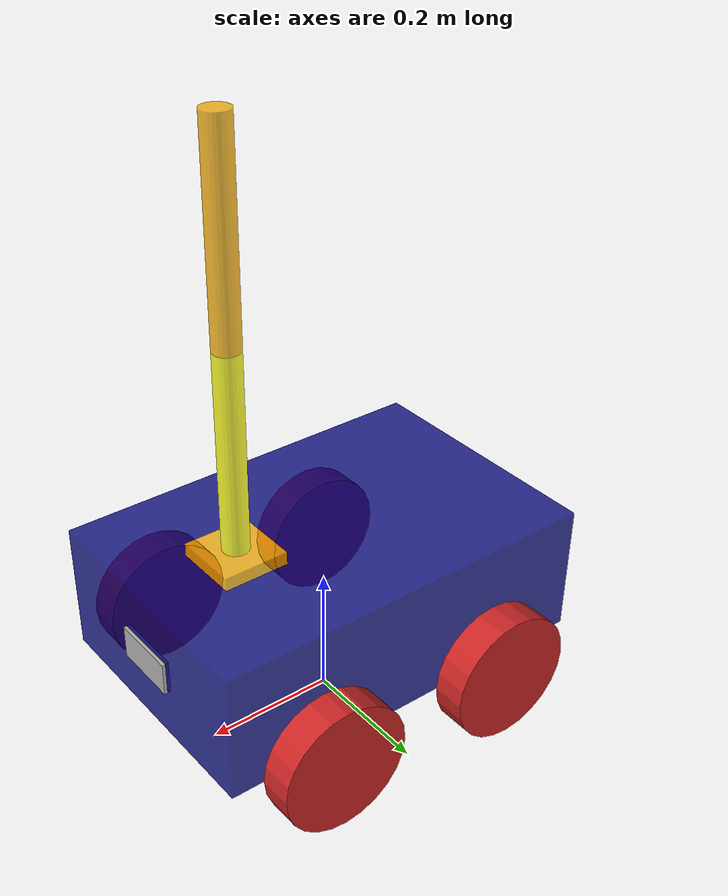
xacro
<?xml version="1.0" encoding="UTF-8"?>
<robot name="my_robot" xmlns:xacro="http://www.ros.org/wiki/xacro">

    <xacro:include filename="common_properties.xacro" />
    <xacro:include filename="mobile_base.xacro" />
    <xacro:include filename="mobile_base_gazebo.xacro" />
    <xacro:include filename="camera.xacro"/>
    <xacro:include filename="mobile_arm.xacro"/>
    <xacro:include filename="mobile_arm_gazebo.xacro"/>

</robot>

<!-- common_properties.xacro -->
<robot xmlns:xacro="http://www.ros.org/wiki/xacro">

    <!-- materials -->
    <material name="green">
        <color rgba="0 0.5 0 0.8" />
    </material>

    <material name="blue">
        <color rgba="0 0 0.5 0.8" />
    </material>

    <material name="grey">
        <color rgba="0.5 0.5 0.5 0.8" />
    </material>

    <material name="orange">
        <color rgba="1 0.7 0 0.8" />
    </material>

    <material name="yellow">
        <color rgba="1 1 0 0.8" />
    </material>

<!-- xacro marcos -->
    <xacro:macro name="box_inertia" params="m l w h xyz rpy">
        <inertial>
            <origin xyz="${xyz}" rpy="${rpy}" />
            <mass value="${m}" />
            <inertia ixx="${(m/12) * (h*h + l*l)}" ixy="0" ixz="0"
                     iyx="0" iyy="${(m/12) * (w*w + l*l)}" iyz="0"
                     izx="0" izy="0" izz="${(m/12) * (w*w + h*h)}"/>
        </inertial>
    </xacro:macro>

    <xacro:macro name="cylinder_inertia" params="m r h xyz rpy">
    <inertial>
        <origin xyz="${xyz}" rpy="${rpy}" />
        <mass value="${m}" />
        <inertia ixx="${(m/12) * (3*r*r + h*h)}" ixy="0" ixz="0"
                 iyx="0" iyy="${(m/12) * (3*r*r + h*h)}" iyz="0"
                 izx="0" izy="0" izz="${(m*r*r)/2}"/>

    </inertial>
</xacro:macro>

    <xacro:macro name="sphere_inertia" params="m r xyz rpy">
        <inertial>
            <origin xyz="${xyz}" rpy="${rpy}" />
            <mass value="${m}" />
            <inertia ixx="${(2*m*r*r)/5}" ixy="0" ixz="0"
                     iyx="0" iyy="${(2*m*r*r)/5}" iyz="0"
                     izx="0" izy="0" izz="${(2*m*r*r)/5}"/>
        </inertial>
    </xacro:macro>

</robot>

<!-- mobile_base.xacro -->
<robot xmlns:xacro="http://www.ros.org/wiki/xacro">

    <xacro:property name="base_length" value="0.6" />
    <xacro:property name="base_width" value="0.4" />
    <xacro:property name="base_height" value="0.2" />
    <xacro:property name="wheel_radius" value="0.1" />
    <xacro:property name="wheel_length" value="0.05" />

    <link name="imu_frame"/>

    <joint name="imu_joint" type="fixed">
        <parent link="base_link"/>
        <child link="imu_frame"/>
        <origin xyz="0.0 0.0 0.08" rpy="0.0 0.0 0.0"/>
    </joint>

    <link name="base_link">
        <visual>
            <geometry>
                <box size="${base_length} ${base_width} ${base_height}" />
            </geometry>
            <origin xyz="0 0 ${base_height / 2.0}" rpy="0 0 0" />
            <material name="blue" />
        </visual>
        <collision>
            <geometry>
                <box size="${base_length} ${base_width} ${base_height}" />
            </geometry>
            <origin xyz="0 0 ${base_height / 2.0}" rpy="0 0 0" />
        </collision>
        <xacro:box_inertia m="100.0" l="${2*base_length}" w="${2*base_width}" h="${2*base_height}"
                           xyz="0 0 ${base_height / 2.0}" rpy="0 0 0" />
    </link>

    <xacro:macro name="wheel_link" params="prefix">
        <link name="${prefix}_wheel_link">
            <visual>
                <geometry>
                    <cylinder radius="${wheel_radius}" length="${wheel_length}" />
                </geometry>
                <origin xyz="0 0 0" rpy="${pi / 2.0} 0 0" />
                <material name="red" />
            </visual>
            <collision>
                <geometry>
                    <cylinder radius="${wheel_radius}" length="${wheel_length}" />
                </geometry>
                <origin xyz="0 0 0" rpy="${pi / 2.0} 0 0" />
            </collision>
            <xacro:cylinder_inertia m="10.0" r="${2*wheel_radius}" h="${2*wheel_length}"
                                    xyz="0 0 0" rpy="${pi / 2.0} 0 0" />
        </link>
    </xacro:macro>

    <xacro:wheel_link prefix="right_back" />
    <xacro:wheel_link prefix="left_back" />
    <xacro:wheel_link prefix="right_front" />
    <xacro:wheel_link prefix="left_front" />

    <link name="base_footprint">
    </link>

    <joint name="base_right_back_wheel_joint" type="continuous">
        <parent link="base_link" />
        <child link="right_back_wheel_link" />
        <origin xyz="${-base_length / 4.0} ${-(base_width + wheel_length) / 2.0} 0" rpy="0 0 0" />
        <axis xyz="0 1 0" />
    </joint>

    <joint name="base_right_front_wheel_joint" type="continuous">
        <parent link="base_link" />
        <child link="right_front_wheel_link" />
        <origin xyz="${(base_length) / 4.0} ${-(base_width + wheel_length) / 2.0} 0" rpy="0 0 0" />
        <axis xyz="0 1 0" />
    </joint>

     <joint name="base_left_back_wheel_joint" type="continuous">
        <parent link="base_link" />
        <child link="left_back_wheel_link" />
        <origin xyz="${-base_length / 4.0} ${(base_width + wheel_length) / 2.0} 0" rpy="0 0 0" />
        <axis xyz="0 1 0" />
    </joint>

    <joint name="base_left_front_wheel_joint" type="continuous">
        <parent link="base_link" />
        <child link="left_front_wheel_link" />
        <origin xyz="${base_length / 4.0} ${(base_width + wheel_length) / 2.0} 0" rpy="0 0 0" />
        <axis xyz="0 1 0" />
    </joint>

    <joint name="base_footprint_joint" type="fixed">
        <parent link="base_footprint" />
        <child link="base_link" />
        <origin xyz="0 0 ${wheel_radius}" rpy="0 0 0" />
    </joint>

</robot>

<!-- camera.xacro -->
<robot xmlns:xacro="http://www.ros.org/wiki/xacro">

    <xacro:property name="camera_length" value="0.01" />
    <xacro:property name="camera_width" value="0.1" />
    <xacro:property name="camera_height" value="0.05" />

    <link name="camera_link">
        <visual>
            <geometry>
                <box size="${camera_length} ${camera_width} ${camera_height}" />
            </geometry>

        </visual>

        <collision>
            <geometry>
                <box size="${camera_length} ${camera_width} ${camera_height}" />
            </geometry>
        </collision>

        <xacro:box_inertia m="0.1" l="${camera_length}" w="${camera_width}"
            h="${camera_height}" xyz="0 0 0" rpy="0 0 0" />
    </link>

    <link name="camera_optical_link" />

    <joint name="camera_optical_link" type="fixed">
        <origin xyz="0 0 0" rpy="${-pi/2} 0 ${-pi/2}"/>
        <parent link="camera_link" />
        <child link="camera_optical_link" />
    </joint>

    <joint name="base_camera_joint" type="fixed">
        <parent link="base_link" />
        <child link="camera_link" />
        <origin xyz="${base_length/2.0} 0 ${base_height/2.0}" rpy="0 0 0" />
    </joint>

    <gazebo reference="camera_link">
        <sensor type="camera" name="camera1">
          <update_rate>30.0</update_rate>
          <visualize>true</visualize>
          <pose>0 0 0 0 0 0</pose>
          <plugin name="camera_controller" filename="libgazebo_ros_camera.so">
            <frameName>camera_optical_link</frameName>
          </plugin>
        </sensor>
      </gazebo>

</robot>

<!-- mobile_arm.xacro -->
<robot xmlns:xacro="http://www.ros.org/wiki/xacro">

    <xacro:property name="arm_base_length" value="0.1" />
    <xacro:property name="arm_base_width" value="0.1" />
    <xacro:property name="arm_base_height" value="0.02" />
    <xacro:property name="forearm_radius" value="0.02" />
    <xacro:property name="forearm_length" value="0.3" />
    <xacro:property name="hand_radius" value="0.02" />
    <xacro:property name="hand_length" value="0.3" />

    <link name="arm_base_link">
        <visual>
            <geometry>
                <box size="${arm_base_length} ${arm_base_width} ${arm_base_height}" />
            </geometry>
            <origin xyz="0 0 ${arm_base_height / 2.0}" rpy="0 0 0" />
            <material name="orange" />
        </visual>
        <collision>
            <geometry>
                <box size="${arm_base_length} ${arm_base_width} ${arm_base_height}" />
            </geometry>
            <origin xyz="0 0 ${arm_base_height / 2.0}" rpy="0 0 0" />
        </collision>
        <xacro:box_inertia m="0.5" l="${2*arm_base_length}" w="${2*arm_base_width}" h="${2*arm_base_height}"
                           xyz="0 0 ${arm_base_height / 2.0}" rpy="0 0 0" />
    </link>

    <link name="forearm_link">
        <visual>
            <geometry>
                <cylinder radius="${forearm_radius}" length="${forearm_length}" />
            </geometry>
            <origin xyz="0 0 ${forearm_length / 2.0}" rpy="0 0 0" />
            <material name="yellow" />
        </visual>
        <collision>
            <geometry>
                <cylinder radius="${forearm_radius}" length="${forearm_length}" />
            </geometry>
            <origin xyz="0 0 ${forearm_length / 2.0}" rpy="0 0 0" />
        </collision>
        <xacro:cylinder_inertia m="0.3" r="${2*forearm_radius}" h="${2*forearm_length}"
                                xyz="0 0 ${forearm_length / 2.0}" rpy="0 0 0" />
    </link>

    <link name="hand_link">
        <visual>
            <geometry>
                <cylinder radius="${hand_radius}" length="${hand_length}" />
            </geometry>
            <origin xyz="0 0 ${hand_length / 2.0}" rpy="0 0 0" />
            <material name="orange" />
        </visual>
        <collision>
             <geometry>
                <cylinder radius="${hand_radius}" length="${hand_length}" />
            </geometry>
            <origin xyz="0 0 ${hand_length / 2.0}" rpy="0 0 0" />
        </collision>
        <xacro:cylinder_inertia m="0.3" r="${2*hand_radius}" h="${2*hand_length}"
                                xyz="0 0 ${hand_length / 2.0}" rpy="0 0 0" />
    </link>

    <joint name="arm_base_base_link_joint" type="fixed">
        <parent link="base_link" />
        <child link="arm_base_link" />
        <origin xyz="${base_length / 4.0} 0 ${base_height}" rpy="0 0 0" />
    </joint>

    <joint name="arm_base_forearm_joint" type="revolute">
        <parent link="arm_base_link" />
        <child link="forearm_link" />
        <origin xyz="0 0 ${arm_base_height}" rpy="0 0 0" />
        <axis xyz="0 1 0" />
        <limit lower="0" upper="${pi/2}" effort="100" velocity="100" />
        <dynamics friction="0.05" damping="0.1" />
    </joint>

    <joint name="forearm_hand_joint" type="revolute">
        <parent link="forearm_link" />
        <child link="hand_link" />
        <origin xyz="0 0 ${forearm_length}" rpy="0 0 0" />
        <axis xyz="0 1 0" />
        <limit lower="0" upper="${pi/2}" effort="100" velocity="100" />
        <dynamics friction="0.05" damping="0.1" />
    </joint>

</robot>
